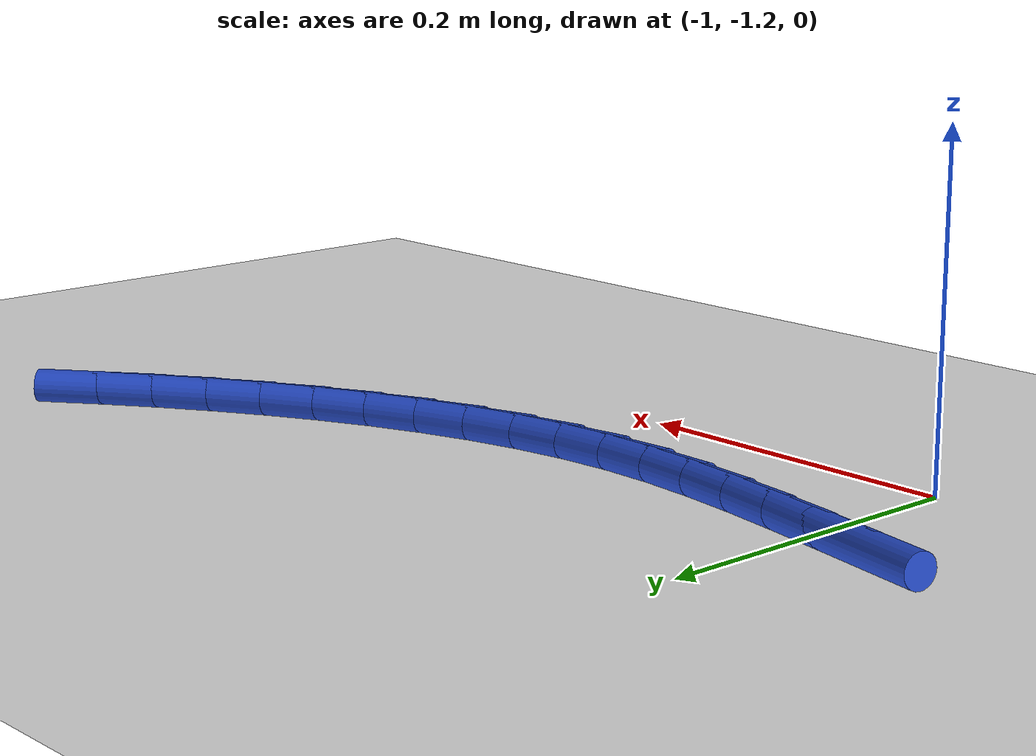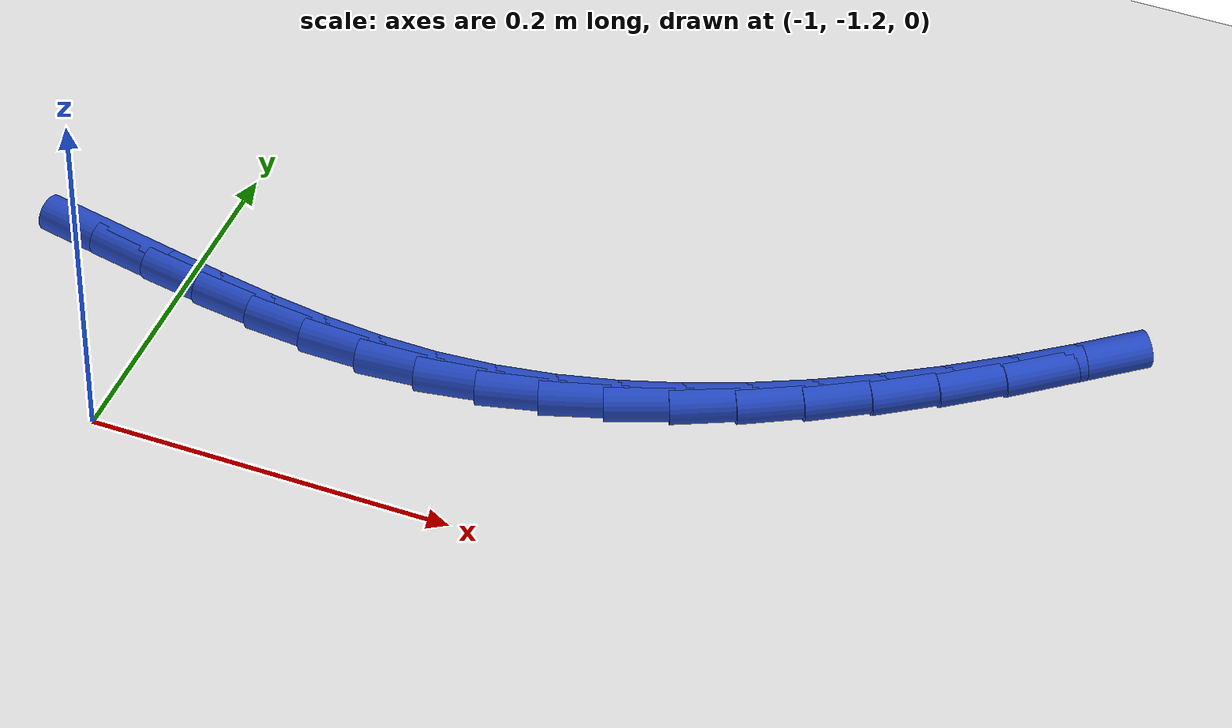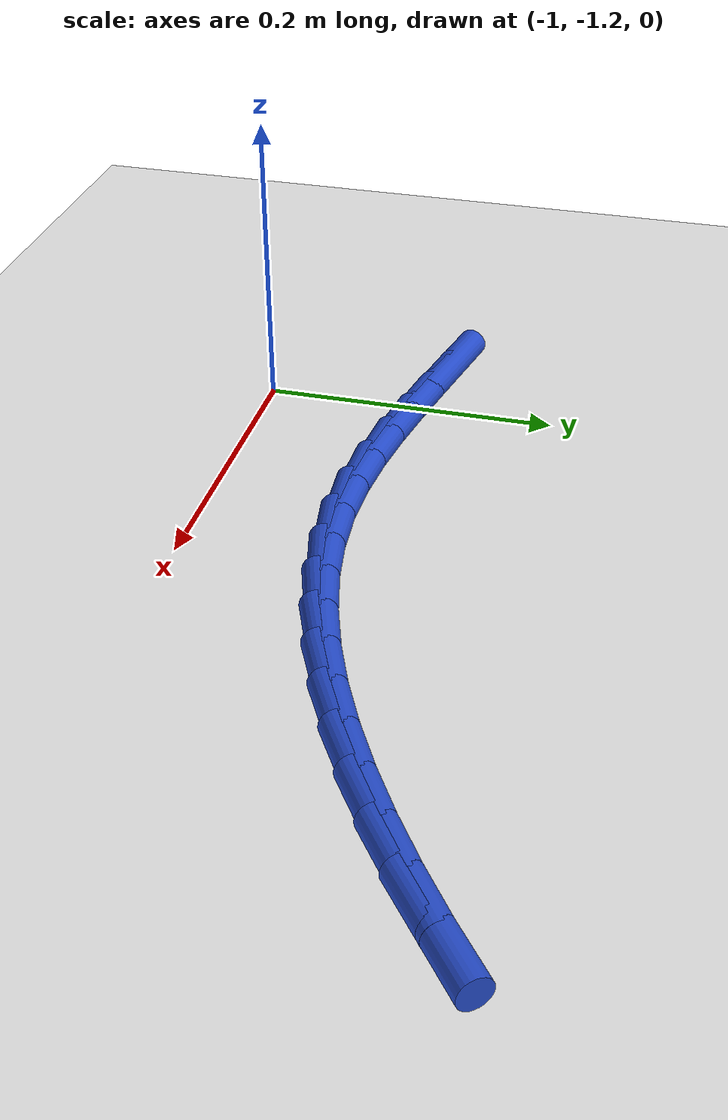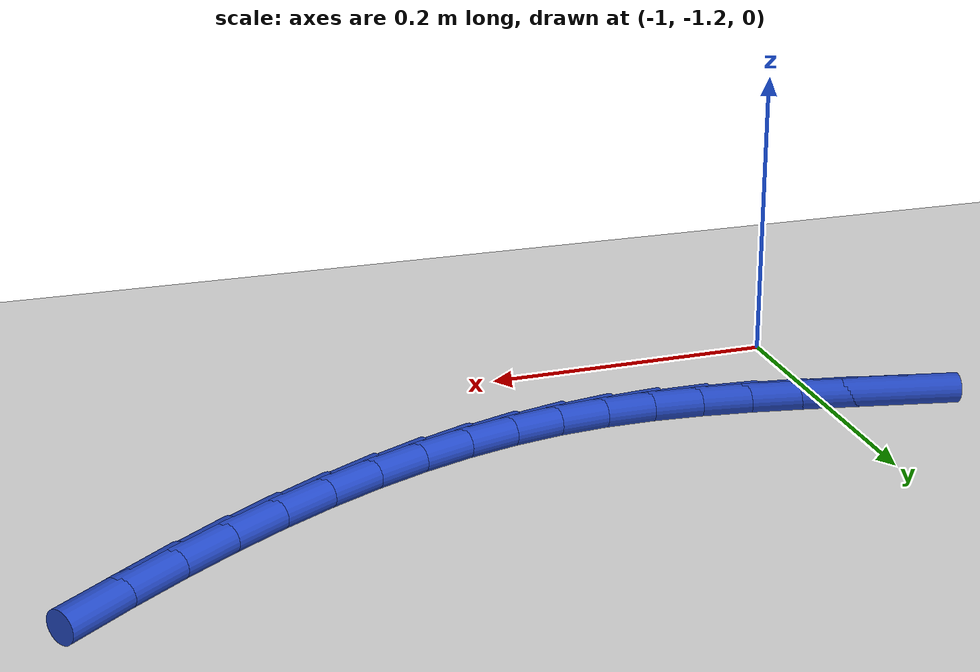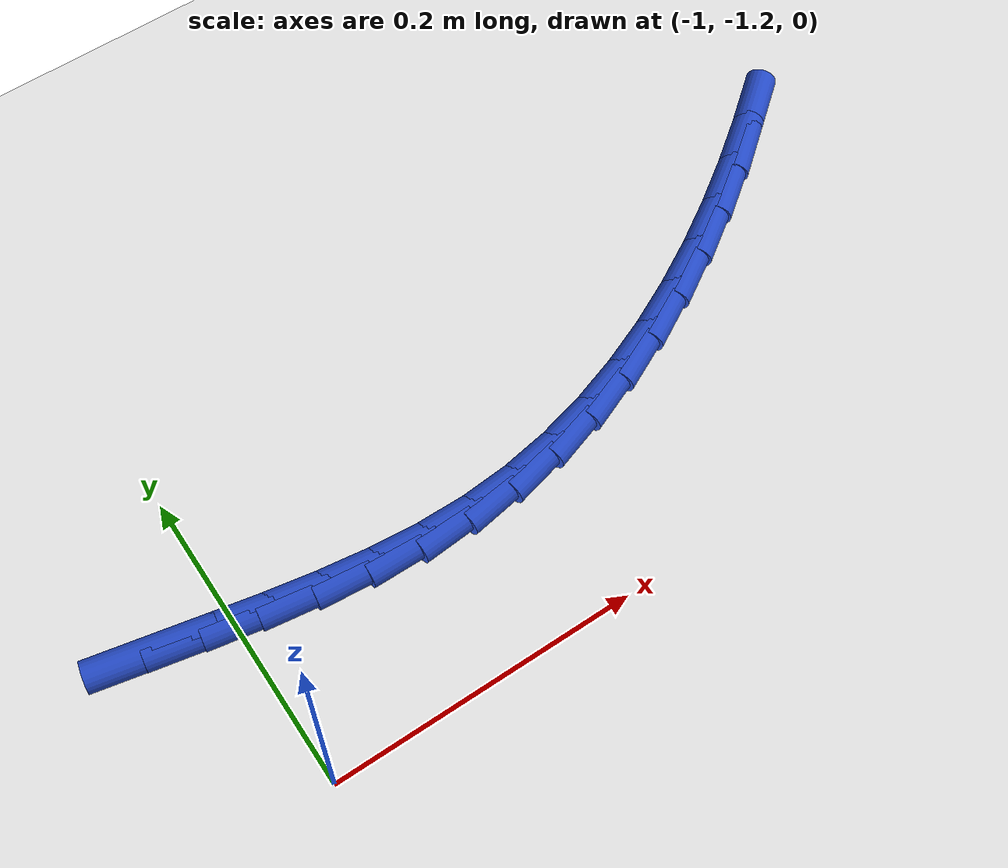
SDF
<sdf version="1.6">
 <world name="default">
  <model name="ground_plane">
   <static>1</static>
   <link name="link">
    <collision name="collision">
     <geometry><plane><normal>0 0 1</normal><size>100 100</size></plane></geometry>
     <surface><friction><ode><mu>100</mu><mu2>50</mu2></ode></friction></surface>
    </collision>
    <visual name="visual">
     <cast_shadows>0</cast_shadows>
     <geometry><plane><normal>0 0 1</normal><size>100 100</size></plane></geometry>
     <material>
      <script><uri>file://media/materials/scripts/gazebo.material</uri><name>Gazebo/WhiteGlow</name></script>
     </material>
    </visual>
   </link>
  </model>
  <model name="line">
   <link name="link_150">
    <pose>-1.0479311386932972 -1.0809383159633204 0.01 0 1.57 -0.20382686350143353</pose>
    <collision name="collision">
     <geometry><cylinder><radius>0.01</radius><length>0.08</length></cylinder></geometry>
    </collision>
    <visual name="visual">
     <material>
      <script><name>Gazebo/Blue</name><uri>file://media/materials/scripts/gazebo.material</uri></script>
     </material>
     <geometry><cylinder><radius>0.01</radius><length>0.08</length></cylinder></geometry>
    </visual>
   </link>
   <link name="link_151">
    <pose>-1.0142742235718991 -1.0878951081851393 0.01 0 1.57 -0.19761190893252037</pose>
    <collision name="collision">
     <geometry><cylinder><radius>0.01</radius><length>0.08</length></cylinder></geometry>
    </collision>
    <visual name="visual">
     <material>
      <script><name>Gazebo/Blue</name><uri>file://media/materials/scripts/gazebo.material</uri></script>
     </material>
     <geometry><cylinder><radius>0.01</radius><length>0.08</length></cylinder></geometry>
    </visual>
   </link>
   <link name="link_152">
    <pose>-0.9807590084927071 -1.0946056925528866 0.01 0 1.57 -0.1759322407952527</pose>
    <collision name="collision">
     <geometry><cylinder><radius>0.01</radius><length>0.08</length></cylinder></geometry>
    </collision>
    <visual name="visual">
     <material>
      <script><name>Gazebo/Blue</name><uri>file://media/materials/scripts/gazebo.material</uri></script>
     </material>
     <geometry><cylinder><radius>0.01</radius><length>0.08</length></cylinder></geometry>
    </visual>
   </link>
   <link name="link_153">
    <pose>-0.9474084958828793 -1.1005344185069088 0.01 0 1.57 -0.13816196914081455</pose>
    <collision name="collision">
     <geometry><cylinder><radius>0.01</radius><length>0.08</length></cylinder></geometry>
    </collision>
    <visual name="visual">
     <material>
      <script><name>Gazebo/Blue</name><uri>file://media/materials/scripts/gazebo.material</uri></script>
     </material>
     <geometry><cylinder><radius>0.01</radius><length>0.08</length></cylinder></geometry>
    </visual>
   </link>
   <link name="link_154">
    <pose>-0.9142456881695725 -1.105145635487551 0.01 0 1.57 -0.08350435356903099</pose>
    <collision name="collision">
     <geometry><cylinder><radius>0.01</radius><length>0.08</length></cylinder></geometry>
    </collision>
    <visual name="visual">
     <material>
      <script><name>Gazebo/Blue</name><uri>file://media/materials/scripts/gazebo.material</uri></script>
     </material>
     <geometry><cylinder><radius>0.01</radius><length>0.08</length></cylinder></geometry>
    </visual>
   </link>
   <link name="link_155">
    <pose>-0.8812935877799453 -1.10790369293516 0.01 0 1.57 -0.01128514185704959</pose>
    <collision name="collision">
     <geometry><cylinder><radius>0.01</radius><length>0.08</length></cylinder></geometry>
    </collision>
    <visual name="visual">
     <material>
      <script><name>Gazebo/Blue</name><uri>file://media/materials/scripts/gazebo.material</uri></script>
     </material>
     <geometry><cylinder><radius>0.01</radius><length>0.08</length></cylinder></geometry>
    </visual>
   </link>
   <link name="link_156">
    <pose>-0.8485751971411544 -1.1082729402900813 0.01 0 1.57 0.07689413490995782</pose>
    <collision name="collision">
     <geometry><cylinder><radius>0.01</radius><length>0.08</length></cylinder></geometry>
    </collision>
    <visual name="visual">
     <material>
      <script><name>Gazebo/Blue</name><uri>file://media/materials/scripts/gazebo.material</uri></script>
     </material>
     <geometry><cylinder><radius>0.01</radius><length>0.08</length></cylinder></geometry>
    </visual>
   </link>
   <link name="link_157">
    <pose>-0.816114724341169 -1.1057719892402162 0.01 0 1.57 0.16619891731775607</pose>
    <collision name="collision">
     <geometry><cylinder><radius>0.01</radius><length>0.08</length></cylinder></geometry>
    </collision>
    <visual name="visual">
     <material>
      <script><name>Gazebo/Blue</name><uri>file://media/materials/scripts/gazebo.material</uri></script>
     </material>
     <geometry><cylinder><radius>0.01</radius><length>0.08</length></cylinder></geometry>
    </visual>
   </link>
   <link name="link_158">
    <pose>-0.783946519205401 -1.100375892839547 0.01 0 1.57 0.24877657210497703</pose>
    <collision name="collision">
     <geometry><cylinder><radius>0.01</radius><length>0.08</length></cylinder></geometry>
    </collision>
    <visual name="visual">
     <material>
      <script><name>Gazebo/Blue</name><uri>file://media/materials/scripts/gazebo.material</uri></script>
     </material>
     <geometry><cylinder><radius>0.01</radius><length>0.08</length></cylinder></geometry>
    </visual>
   </link>
   <link name="link_159">
    <pose>-0.7521100079450715 -1.0922881731284162 0.01 0 1.57 0.3241989206450262</pose>
    <collision name="collision">
     <geometry><cylinder><radius>0.01</radius><length>0.08</length></cylinder></geometry>
    </collision>
    <visual name="visual">
     <material>
      <script><name>Gazebo/Blue</name><uri>file://media/materials/scripts/gazebo.material</uri></script>
     </material>
     <geometry><cylinder><radius>0.01</radius><length>0.08</length></cylinder></geometry>
    </visual>
   </link>
   <link name="link_160">
    <pose>-0.7206446545706887 -1.0817140533505896 0.01 0 1.57 0.39247933327407564</pose>
    <collision name="collision">
     <geometry><cylinder><radius>0.01</radius><length>0.08</length></cylinder></geometry>
    </collision>
    <visual name="visual">
     <material>
      <script><name>Gazebo/Blue</name><uri>file://media/materials/scripts/gazebo.material</uri></script>
     </material>
     <geometry><cylinder><radius>0.01</radius><length>0.08</length></cylinder></geometry>
    </visual>
   </link>
   <link name="link_161">
    <pose>-0.6895899230927618 -1.0688587567498324 0.01 0 1.57 0.45390087359409176</pose>
    <collision name="collision">
     <geometry><cylinder><radius>0.01</radius><length>0.08</length></cylinder></geometry>
    </collision>
    <visual name="visual">
     <material>
      <script><name>Gazebo/Blue</name><uri>file://media/materials/scripts/gazebo.material</uri></script>
     </material>
     <geometry><cylinder><radius>0.01</radius><length>0.08</length></cylinder></geometry>
    </visual>
   </link>
   <link name="link_162">
    <pose>-0.6589852775217985 -1.0539275065699096 0.01 0 1.57 0.5089076955888794</pose>
    <collision name="collision">
     <geometry><cylinder><radius>0.01</radius><length>0.08</length></cylinder></geometry>
    </collision>
    <visual name="visual">
     <material>
      <script><name>Gazebo/Blue</name><uri>file://media/materials/scripts/gazebo.material</uri></script>
     </material>
     <geometry><cylinder><radius>0.01</radius><length>0.08</length></cylinder></geometry>
    </visual>
   </link>
   <link name="link_163">
    <pose>-0.6288701818683077 -1.0371255260545864 0.01 0 1.57 0.5580203103487676</pose>
    <collision name="collision">
     <geometry><cylinder><radius>0.01</radius><length>0.08</length></cylinder></geometry>
    </collision>
    <visual name="visual">
     <material>
      <script><name>Gazebo/Blue</name><uri>file://media/materials/scripts/gazebo.material</uri></script>
     </material>
     <geometry><cylinder><radius>0.01</radius><length>0.08</length></cylinder></geometry>
    </visual>
   </link>
   <link name="link_164">
    <pose>-0.5992841001427983 -1.0186580384476283 0.01 0 1.57 0.6017762928528357</pose>
    <collision name="collision">
     <geometry><cylinder><radius>0.01</radius><length>0.08</length></cylinder></geometry>
    </collision>
    <visual name="visual">
     <material>
      <script><name>Gazebo/Blue</name><uri>file://media/materials/scripts/gazebo.material</uri></script>
     </material>
     <geometry><cylinder><radius>0.01</radius><length>0.08</length></cylinder></geometry>
    </visual>
   </link>
   <link name="link_165">
    <pose>-0.5702664963557783 -0.9987302669928001 0.01 0 1.57 0.6406924627491449</pose>
    <collision name="collision">
     <geometry><cylinder><radius>0.01</radius><length>0.08</length></cylinder></geometry>
    </collision>
    <visual name="visual">
     <material>
      <script><name>Gazebo/Blue</name><uri>file://media/materials/scripts/gazebo.material</uri></script>
     </material>
     <geometry><cylinder><radius>0.01</radius><length>0.08</length></cylinder></geometry>
    </visual>
   </link>
   <link name="link_166">
    <pose>-0.5418568345177566 -0.9775474349338673 0.01 0 1.57 0.6752429295348401</pose>
    <collision name="collision">
     <geometry><cylinder><radius>0.01</radius><length>0.08</length></cylinder></geometry>
    </collision>
    <visual name="visual">
     <material>
      <script><name>Gazebo/Blue</name><uri>file://media/materials/scripts/gazebo.material</uri></script>
     </material>
     <geometry><cylinder><radius>0.01</radius><length>0.08</length></cylinder></geometry>
    </visual>
   </link>
  </model>
 </world>
</sdf>
